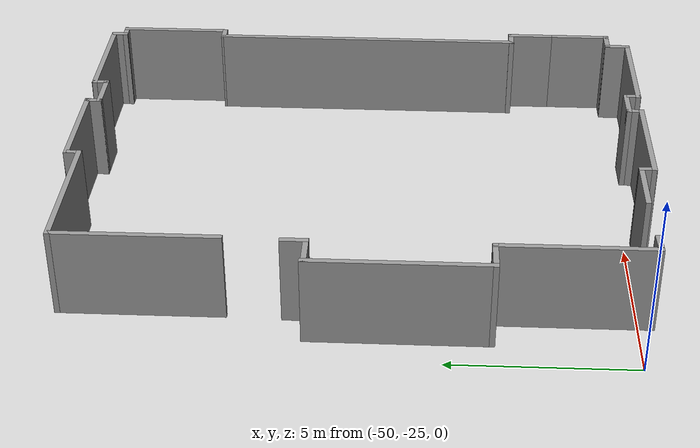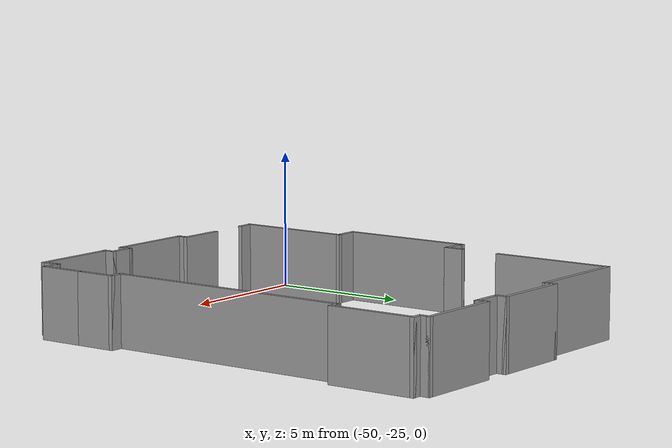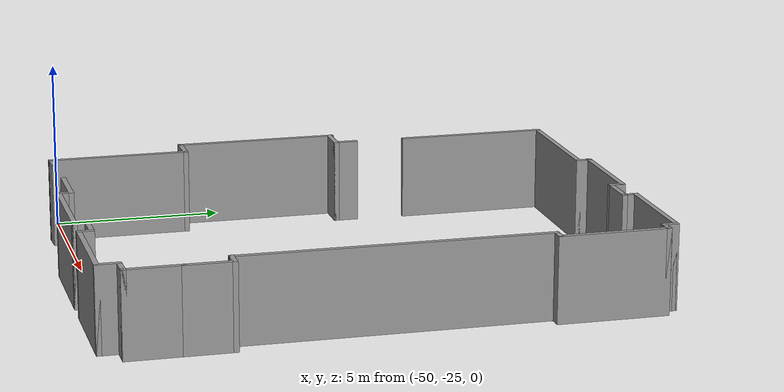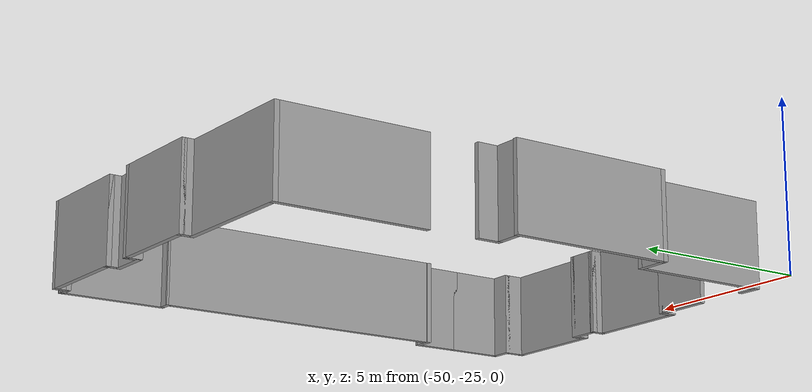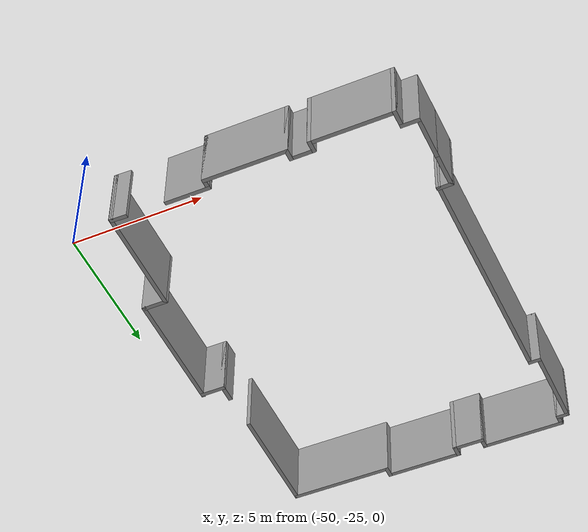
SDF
<?xml version='1.0'?>
<sdf version='1.7'>
  <model name='1107AI_Paredes'>
    <pose>-24.6225 -12.8543 0 0 -0 0</pose>
    <link name='Wall_0'>
      <collision name='Wall_0_Collision'>
        <geometry>
          <box>
            <size>0.667096 0.15 2.5</size>
          </box>
        </geometry>
        <pose>0 0 1.25 0 -0 0</pose>
      </collision>
      <visual name='Wall_0_Visual'>
        <pose>0 0 1.25 0 -0 0</pose>
        <geometry>
          <box>
            <size>0.667096 0.15 2.5</size>
          </box>
        </geometry>
        <material>
          <script>
            <uri>file://media/materials/scripts/gazebo.material</uri>
            <name>Gazebo/Grey</name>
          </script>
          <ambient>1 1 1 1</ambient>
        </material>
        <meta>
          <layer>0</layer>
        </meta>
      </visual>
      <pose>-23.4239 -12.4964 0 0 -0 -3.10728</pose>
    </link>
    <link name='Wall_1'>
      <collision name='Wall_1_Collision'>
        <geometry>
          <box>
            <size>0.15 0.15 2.5</size>
          </box>
        </geometry>
        <pose>0 0 1.25 0 -0 0</pose>
      </collision>
      <visual name='Wall_1_Visual'>
        <pose>0 0 1.25 0 -0 0</pose>
        <geometry>
          <box>
            <size>0.15 0.15 2.5</size>
          </box>
        </geometry>
        <material>
          <script>
            <uri>file://media/materials/scripts/gazebo.material</uri>
            <name>Gazebo/Grey</name>
          </script>
          <ambient>1 1 1 1</ambient>
        </material>
        <meta>
          <layer>0</layer>
        </meta>
      </visual>
      <pose>-23.6823 -12.5053 0 0 -0 0</pose>
    </link>
    <link name='Wall_11'>
      <collision name='Wall_11_Collision'>
        <geometry>
          <box>
            <size>1.75 0.15 2.5</size>
          </box>
        </geometry>
        <pose>0 0 1.25 0 -0 0</pose>
      </collision>
      <visual name='Wall_11_Visual'>
        <pose>0 0 1.25 0 -0 0</pose>
        <geometry>
          <box>
            <size>1.75 0.15 2.5</size>
          </box>
        </geometry>
        <material>
          <script>
            <uri>file://media/materials/scripts/gazebo.material</uri>
            <name>Gazebo/Grey</name>
          </script>
          <ambient>1 1 1 1</ambient>
        </material>
        <meta>
          <layer>0</layer>
        </meta>
      </visual>
      <pose>-20.776 -12.4293 0 0 -0 0</pose>
    </link>
    <link name='Wall_12'>
      <collision name='Wall_12_Collision'>
        <geometry>
          <box>
            <size>0.5 0.15 2.5</size>
          </box>
        </geometry>
        <pose>0 0 1.25 0 -0 0</pose>
      </collision>
      <visual name='Wall_12_Visual'>
        <pose>0 0 1.25 0 -0 0</pose>
        <geometry>
          <box>
            <size>0.5 0.15 2.5</size>
          </box>
        </geometry>
        <material>
          <script>
            <uri>file://media/materials/scripts/gazebo.material</uri>
            <name>Gazebo/Grey</name>
          </script>
          <ambient>1 1 1 1</ambient>
        </material>
        <meta>
          <layer>0</layer>
        </meta>
      </visual>
      <pose>-19.976 -12.6043 0 0 -0 -1.5708</pose>
    </link>
    <link name='Wall_13'>
      <collision name='Wall_13_Collision'>
        <geometry>
          <box>
            <size>3.25 0.15 2.5</size>
          </box>
        </geometry>
        <pose>0 0 1.25 0 -0 0</pose>
      </collision>
      <visual name='Wall_13_Visual'>
        <pose>0 0 1.25 0 -0 0</pose>
        <geometry>
          <box>
            <size>3.25 0.15 2.5</size>
          </box>
        </geometry>
        <material>
          <script>
            <uri>file://media/materials/scripts/gazebo.material</uri>
            <name>Gazebo/Grey</name>
          </script>
          <ambient>1 1 1 1</ambient>
        </material>
        <meta>
          <layer>0</layer>
        </meta>
      </visual>
      <pose>-18.426 -12.7793 0 0 -0 0</pose>
    </link>
    <link name='Wall_14'>
      <collision name='Wall_14_Collision'>
        <geometry>
          <box>
            <size>0.5 0.15 2.5</size>
          </box>
        </geometry>
        <pose>0 0 1.25 0 -0 0</pose>
      </collision>
      <visual name='Wall_14_Visual'>
        <pose>0 0 1.25 0 -0 0</pose>
        <geometry>
          <box>
            <size>0.5 0.15 2.5</size>
          </box>
        </geometry>
        <material>
          <script>
            <uri>file://media/materials/scripts/gazebo.material</uri>
            <name>Gazebo/Grey</name>
          </script>
          <ambient>1 1 1 1</ambient>
        </material>
        <meta>
          <layer>0</layer>
        </meta>
      </visual>
      <pose>-16.876 -12.6043 0 0 -0 1.5708</pose>
    </link>
    <link name='Wall_15'>
      <collision name='Wall_15_Collision'>
        <geometry>
          <box>
            <size>1 0.15 2.5</size>
          </box>
        </geometry>
        <pose>0 0 1.25 0 -0 0</pose>
      </collision>
      <visual name='Wall_15_Visual'>
        <pose>0 0 1.25 0 -0 0</pose>
        <geometry>
          <box>
            <size>1 0.15 2.5</size>
          </box>
        </geometry>
        <material>
          <script>
            <uri>file://media/materials/scripts/gazebo.material</uri>
            <name>Gazebo/Grey</name>
          </script>
          <ambient>1 1 1 1</ambient>
        </material>
        <meta>
          <layer>0</layer>
        </meta>
      </visual>
      <pose>-16.451 -12.4293 0 0 -0 0</pose>
    </link>
    <link name='Wall_16'>
      <collision name='Wall_16_Collision'>
        <geometry>
          <box>
            <size>0.5 0.15 2.5</size>
          </box>
        </geometry>
        <pose>0 0 1.25 0 -0 0</pose>
      </collision>
      <visual name='Wall_16_Visual'>
        <pose>0 0 1.25 0 -0 0</pose>
        <geometry>
          <box>
            <size>0.5 0.15 2.5</size>
          </box>
        </geometry>
        <material>
          <script>
            <uri>file://media/materials/scripts/gazebo.material</uri>
            <name>Gazebo/Grey</name>
          </script>
          <ambient>1 1 1 1</ambient>
        </material>
        <meta>
          <layer>0</layer>
        </meta>
      </visual>
      <pose>-16.026 -12.6043 0 0 -0 -1.5708</pose>
    </link>
    <link name='Wall_17'>
      <collision name='Wall_17_Collision'>
        <geometry>
          <box>
            <size>3.25 0.15 2.5</size>
          </box>
        </geometry>
        <pose>0 0 1.25 0 -0 0</pose>
      </collision>
      <visual name='Wall_17_Visual'>
        <pose>0 0 1.25 0 -0 0</pose>
        <geometry>
          <box>
            <size>3.25 0.15 2.5</size>
          </box>
        </geometry>
        <material>
          <script>
            <uri>file://media/materials/scripts/gazebo.material</uri>
            <name>Gazebo/Grey</name>
          </script>
          <ambient>1 1 1 1</ambient>
        </material>
        <meta>
          <layer>0</layer>
        </meta>
      </visual>
      <pose>-14.476 -12.7793 0 0 -0 0</pose>
    </link>
    <link name='Wall_18'>
      <collision name='Wall_18_Collision'>
        <geometry>
          <box>
            <size>0.75 0.15 2.5</size>
          </box>
        </geometry>
        <pose>0 0 1.25 0 -0 0</pose>
      </collision>
      <visual name='Wall_18_Visual'>
        <pose>0 0 1.25 0 -0 0</pose>
        <geometry>
          <box>
            <size>0.75 0.15 2.5</size>
          </box>
        </geometry>
        <material>
          <script>
            <uri>file://media/materials/scripts/gazebo.material</uri>
            <name>Gazebo/Grey</name>
          </script>
          <ambient>1 1 1 1</ambient>
        </material>
        <meta>
          <layer>0</layer>
        </meta>
      </visual>
      <pose>-12.926 -12.4793 0 0 -0 1.5708</pose>
    </link>
    <link name='Wall_19'>
      <collision name='Wall_19_Collision'>
        <geometry>
          <box>
            <size>0.75 0.15 2.5</size>
          </box>
        </geometry>
        <pose>0 0 1.25 0 -0 0</pose>
      </collision>
      <visual name='Wall_19_Visual'>
        <pose>0 0 1.25 0 -0 0</pose>
        <geometry>
          <box>
            <size>0.75 0.15 2.5</size>
          </box>
        </geometry>
        <material>
          <script>
            <uri>file://media/materials/scripts/gazebo.material</uri>
            <name>Gazebo/Grey</name>
          </script>
          <ambient>1 1 1 1</ambient>
        </material>
        <meta>
          <layer>0</layer>
        </meta>
      </visual>
      <pose>-12.626 -12.1793 0 0 -0 0</pose>
    </link>
    <link name='Wall_2'>
      <collision name='Wall_2_Collision'>
        <geometry>
          <box>
            <size>4.25 0.15 2.5</size>
          </box>
        </geometry>
        <pose>0 0 1.25 0 -0 0</pose>
      </collision>
      <visual name='Wall_2_Visual'>
        <pose>0 0 1.25 0 -0 0</pose>
        <geometry>
          <box>
            <size>4.25 0.15 2.5</size>
          </box>
        </geometry>
        <material>
          <script>
            <uri>file://media/materials/scripts/gazebo.material</uri>
            <name>Gazebo/Grey</name>
          </script>
          <ambient>1 1 1 1</ambient>
        </material>
        <meta>
          <layer>0</layer>
        </meta>
      </visual>
      <pose>-23.6975 -10.4553 0 0 -0 1.5708</pose>
    </link>
    <link name='Wall_20'>
      <collision name='Wall_20_Collision'>
        <geometry>
          <box>
            <size>1.75 0.15 2.5</size>
          </box>
        </geometry>
        <pose>0 0 1.25 0 -0 0</pose>
      </collision>
      <visual name='Wall_20_Visual'>
        <pose>0 0 1.25 0 -0 0</pose>
        <geometry>
          <box>
            <size>1.75 0.15 2.5</size>
          </box>
        </geometry>
        <material>
          <script>
            <uri>file://media/materials/scripts/gazebo.material</uri>
            <name>Gazebo/Grey</name>
          </script>
          <ambient>1 1 1 1</ambient>
        </material>
        <meta>
          <layer>0</layer>
        </meta>
      </visual>
      <pose>-12.326 -11.3793 0 0 -0 1.5708</pose>
    </link>
    <link name='Wall_21'>
      <collision name='Wall_21_Collision'>
        <geometry>
          <box>
            <size>1.5 0.15 2.5</size>
          </box>
        </geometry>
        <pose>0 0 1.25 0 -0 0</pose>
      </collision>
      <visual name='Wall_21_Visual'>
        <pose>0 0 1.25 0 -0 0</pose>
        <geometry>
          <box>
            <size>1.5 0.15 2.5</size>
          </box>
        </geometry>
        <material>
          <script>
            <uri>file://media/materials/scripts/gazebo.material</uri>
            <name>Gazebo/Grey</name>
          </script>
          <ambient>1 1 1 1</ambient>
        </material>
        <meta>
          <layer>0</layer>
        </meta>
      </visual>
      <pose>-12.326 -9.90429 0 0 -0 1.5708</pose>
    </link>
    <link name='Wall_23'>
      <collision name='Wall_23_Collision'>
        <geometry>
          <box>
            <size>0.620681 0.15 2.5</size>
          </box>
        </geometry>
        <pose>0 0 1.25 0 -0 0</pose>
      </collision>
      <visual name='Wall_23_Visual'>
        <pose>0 0 1.25 0 -0 0</pose>
        <geometry>
          <box>
            <size>0.620681 0.15 2.5</size>
          </box>
        </geometry>
        <material>
          <script>
            <uri>file://media/materials/scripts/gazebo.material</uri>
            <name>Gazebo/Grey</name>
          </script>
          <ambient>1 1 1 1</ambient>
        </material>
        <meta>
          <layer>0</layer>
        </meta>
      </visual>
      <pose>-12.5613 -9.22929 0 0 -0 3.14159</pose>
    </link>
    <link name='Wall_24'>
      <collision name='Wall_24_Collision'>
        <geometry>
          <box>
            <size>9.12169 0.15 2.5</size>
          </box>
        </geometry>
        <pose>0 0 1.25 0 -0 0</pose>
      </collision>
      <visual name='Wall_24_Visual'>
        <pose>0 0 1.25 0 -0 0</pose>
        <geometry>
          <box>
            <size>9.12169 0.15 2.5</size>
          </box>
        </geometry>
        <material>
          <script>
            <uri>file://media/materials/scripts/gazebo.material</uri>
            <name>Gazebo/Grey</name>
          </script>
          <ambient>1 1 1 1</ambient>
        </material>
        <meta>
          <layer>0</layer>
        </meta>
      </visual>
      <pose>-12.7638 -4.74346 0 0 -0 1.56795</pose>
    </link>
    <link name='Wall_28'>
      <collision name='Wall_28_Collision'>
        <geometry>
          <box>
            <size>0.5 0.15 2.5</size>
          </box>
        </geometry>
        <pose>0 0 1.25 0 -0 0</pose>
      </collision>
      <visual name='Wall_28_Visual'>
        <pose>0 0 1.25 0 -0 0</pose>
        <geometry>
          <box>
            <size>0.5 0.15 2.5</size>
          </box>
        </geometry>
        <material>
          <script>
            <uri>file://media/materials/scripts/gazebo.material</uri>
            <name>Gazebo/Grey</name>
          </script>
          <ambient>1 1 1 1</ambient>
        </material>
        <meta>
          <layer>0</layer>
        </meta>
      </visual>
      <pose>-12.576 -0.257623 0 0 -0 0</pose>
    </link>
    <link name='Wall_29'>
      <collision name='Wall_29_Collision'>
        <geometry>
          <box>
            <size>3.25 0.15 2.5</size>
          </box>
        </geometry>
        <pose>0 0 1.25 0 -0 0</pose>
      </collision>
      <visual name='Wall_29_Visual'>
        <pose>0 0 1.25 0 -0 0</pose>
        <geometry>
          <box>
            <size>3.25 0.15 2.5</size>
          </box>
        </geometry>
        <material>
          <script>
            <uri>file://media/materials/scripts/gazebo.material</uri>
            <name>Gazebo/Grey</name>
          </script>
          <ambient>1 1 1 1</ambient>
        </material>
        <meta>
          <layer>0</layer>
        </meta>
      </visual>
      <pose>-12.401 1.29238 0 0 -0 1.5708</pose>
    </link>
    <link name='Wall_30'>
      <collision name='Wall_30_Collision'>
        <geometry>
          <box>
            <size>0.5 0.15 2.5</size>
          </box>
        </geometry>
        <pose>0 0 1.25 0 -0 0</pose>
      </collision>
      <visual name='Wall_30_Visual'>
        <pose>0 0 1.25 0 -0 0</pose>
        <geometry>
          <box>
            <size>0.5 0.15 2.5</size>
          </box>
        </geometry>
        <material>
          <script>
            <uri>file://media/materials/scripts/gazebo.material</uri>
            <name>Gazebo/Grey</name>
          </script>
          <ambient>1 1 1 1</ambient>
        </material>
        <meta>
          <layer>0</layer>
        </meta>
      </visual>
      <pose>-12.576 2.84238 0 0 -0 3.14159</pose>
    </link>
    <link name='Wall_31'>
      <collision name='Wall_31_Collision'>
        <geometry>
          <box>
            <size>0.5 0.15 2.5</size>
          </box>
        </geometry>
        <pose>0 0 1.25 0 -0 0</pose>
      </collision>
      <visual name='Wall_31_Visual'>
        <pose>0 0 1.25 0 -0 0</pose>
        <geometry>
          <box>
            <size>0.5 0.15 2.5</size>
          </box>
        </geometry>
        <material>
          <script>
            <uri>file://media/materials/scripts/gazebo.material</uri>
            <name>Gazebo/Grey</name>
          </script>
          <ambient>1 1 1 1</ambient>
        </material>
        <meta>
          <layer>0</layer>
        </meta>
      </visual>
      <pose>-12.751 3.01738 0 0 -0 1.5708</pose>
    </link>
    <link name='Wall_32'>
      <collision name='Wall_32_Collision'>
        <geometry>
          <box>
            <size>3.25 0.15 2.5</size>
          </box>
        </geometry>
        <pose>0 0 1.25 0 -0 0</pose>
      </collision>
      <visual name='Wall_32_Visual'>
        <pose>0 0 1.25 0 -0 0</pose>
        <geometry>
          <box>
            <size>3.25 0.15 2.5</size>
          </box>
        </geometry>
        <material>
          <script>
            <uri>file://media/materials/scripts/gazebo.material</uri>
            <name>Gazebo/Grey</name>
          </script>
          <ambient>1 1 1 1</ambient>
        </material>
        <meta>
          <layer>0</layer>
        </meta>
      </visual>
      <pose>-14.301 3.19238 0 0 -0 3.14159</pose>
    </link>
    <link name='Wall_33'>
      <collision name='Wall_33_Collision'>
        <geometry>
          <box>
            <size>0.5 0.15 2.5</size>
          </box>
        </geometry>
        <pose>0 0 1.25 0 -0 0</pose>
      </collision>
      <visual name='Wall_33_Visual'>
        <pose>0 0 1.25 0 -0 0</pose>
        <geometry>
          <box>
            <size>0.5 0.15 2.5</size>
          </box>
        </geometry>
        <material>
          <script>
            <uri>file://media/materials/scripts/gazebo.material</uri>
            <name>Gazebo/Grey</name>
          </script>
          <ambient>1 1 1 1</ambient>
        </material>
        <meta>
          <layer>0</layer>
        </meta>
      </visual>
      <pose>-15.851 3.01738 0 0 -0 -1.5708</pose>
    </link>
    <link name='Wall_34'>
      <collision name='Wall_34_Collision'>
        <geometry>
          <box>
            <size>1.25 0.15 2.5</size>
          </box>
        </geometry>
        <pose>0 0 1.25 0 -0 0</pose>
      </collision>
      <visual name='Wall_34_Visual'>
        <pose>0 0 1.25 0 -0 0</pose>
        <geometry>
          <box>
            <size>1.25 0.15 2.5</size>
          </box>
        </geometry>
        <material>
          <script>
            <uri>file://media/materials/scripts/gazebo.material</uri>
            <name>Gazebo/Grey</name>
          </script>
          <ambient>1 1 1 1</ambient>
        </material>
        <meta>
          <layer>0</layer>
        </meta>
      </visual>
      <pose>-16.401 2.84238 0 0 -0 3.14159</pose>
    </link>
    <link name='Wall_35'>
      <collision name='Wall_35_Collision'>
        <geometry>
          <box>
            <size>0.5 0.15 2.5</size>
          </box>
        </geometry>
        <pose>0 0 1.25 0 -0 0</pose>
      </collision>
      <visual name='Wall_35_Visual'>
        <pose>0 0 1.25 0 -0 0</pose>
        <geometry>
          <box>
            <size>0.5 0.15 2.5</size>
          </box>
        </geometry>
        <material>
          <script>
            <uri>file://media/materials/scripts/gazebo.material</uri>
            <name>Gazebo/Grey</name>
          </script>
          <ambient>1 1 1 1</ambient>
        </material>
        <meta>
          <layer>0</layer>
        </meta>
      </visual>
      <pose>-16.951 3.01738 0 0 -0 1.5708</pose>
    </link>
    <link name='Wall_36'>
      <collision name='Wall_36_Collision'>
        <geometry>
          <box>
            <size>3 0.15 2.5</size>
          </box>
        </geometry>
        <pose>0 0 1.25 0 -0 0</pose>
      </collision>
      <visual name='Wall_36_Visual'>
        <pose>0 0 1.25 0 -0 0</pose>
        <geometry>
          <box>
            <size>3 0.15 2.5</size>
          </box>
        </geometry>
        <material>
          <script>
            <uri>file://media/materials/scripts/gazebo.material</uri>
            <name>Gazebo/Grey</name>
          </script>
          <ambient>1 1 1 1</ambient>
        </material>
        <meta>
          <layer>0</layer>
        </meta>
      </visual>
      <pose>-18.376 3.19238 0 0 -0 3.14159</pose>
    </link>
    <link name='Wall_37'>
      <collision name='Wall_37_Collision'>
        <geometry>
          <box>
            <size>0.5 0.15 2.5</size>
          </box>
        </geometry>
        <pose>0 0 1.25 0 -0 0</pose>
      </collision>
      <visual name='Wall_37_Visual'>
        <pose>0 0 1.25 0 -0 0</pose>
        <geometry>
          <box>
            <size>0.5 0.15 2.5</size>
          </box>
        </geometry>
        <material>
          <script>
            <uri>file://media/materials/scripts/gazebo.material</uri>
            <name>Gazebo/Grey</name>
          </script>
          <ambient>1 1 1 1</ambient>
        </material>
        <meta>
          <layer>0</layer>
        </meta>
      </visual>
      <pose>-19.801 3.01738 0 0 -0 -1.5708</pose>
    </link>
    <link name='Wall_38'>
      <collision name='Wall_38_Collision'>
        <geometry>
          <box>
            <size>4 0.15 2.5</size>
          </box>
        </geometry>
        <pose>0 0 1.25 0 -0 0</pose>
      </collision>
      <visual name='Wall_38_Visual'>
        <pose>0 0 1.25 0 -0 0</pose>
        <geometry>
          <box>
            <size>4 0.15 2.5</size>
          </box>
        </geometry>
        <material>
          <script>
            <uri>file://media/materials/scripts/gazebo.material</uri>
            <name>Gazebo/Grey</name>
          </script>
          <ambient>1 1 1 1</ambient>
        </material>
        <meta>
          <layer>0</layer>
        </meta>
      </visual>
      <pose>-21.726 2.84238 0 0 -0 3.14159</pose>
    </link>
    <link name='Wall_39'>
      <collision name='Wall_39_Collision'>
        <geometry>
          <box>
            <size>4.5 0.15 2.5</size>
          </box>
        </geometry>
        <pose>0 0 1.25 0 -0 0</pose>
      </collision>
      <visual name='Wall_39_Visual'>
        <pose>0 0 1.25 0 -0 0</pose>
        <geometry>
          <box>
            <size>4.5 0.15 2.5</size>
          </box>
        </geometry>
        <material>
          <script>
            <uri>file://media/materials/scripts/gazebo.material</uri>
            <name>Gazebo/Grey</name>
          </script>
          <ambient>1 1 1 1</ambient>
        </material>
        <meta>
          <layer>0</layer>
        </meta>
      </visual>
      <pose>-23.651 0.667377 0 0 -0 -1.5708</pose>
    </link>
    <link name='Wall_41'>
      <collision name='Wall_41_Collision'>
        <geometry>
          <box>
            <size>0.75 0.15 2.5</size>
          </box>
        </geometry>
        <pose>0 0 1.25 0 -0 0</pose>
      </collision>
      <visual name='Wall_41_Visual'>
        <pose>0 0 1.25 0 -0 0</pose>
        <geometry>
          <box>
            <size>0.75 0.15 2.5</size>
          </box>
        </geometry>
        <material>
          <script>
            <uri>file://media/materials/scripts/gazebo.material</uri>
            <name>Gazebo/Grey</name>
          </script>
          <ambient>1 1 1 1</ambient>
        </material>
        <meta>
          <layer>0</layer>
        </meta>
      </visual>
      <pose>-23.6975 -3.38463 0 0 -0 1.5708</pose>
    </link>
    <link name='Wall_7'>
      <collision name='Wall_7_Collision'>
        <geometry>
          <box>
            <size>1 0.15 2.5</size>
          </box>
        </geometry>
        <pose>0 0 1.25 0 -0 0</pose>
      </collision>
      <visual name='Wall_7_Visual'>
        <pose>0 0 1.25 0 -0 0</pose>
        <geometry>
          <box>
            <size>1 0.15 2.5</size>
          </box>
        </geometry>
        <material>
          <script>
            <uri>file://media/materials/scripts/gazebo.material</uri>
            <name>Gazebo/Grey</name>
          </script>
          <ambient>1 1 1 1</ambient>
        </material>
        <meta>
          <layer>0</layer>
        </meta>
      </visual>
      <pose>-24.1225 -8.40532 0 0 -0 3.14159</pose>
    </link>
    <link name='Wall_8'>
      <collision name='Wall_8_Collision'>
        <geometry>
          <box>
            <size>4.91091 0.15 2.5</size>
          </box>
        </geometry>
        <pose>0 0 1.25 0 -0 0</pose>
      </collision>
      <visual name='Wall_8_Visual'>
        <pose>0 0 1.25 0 -0 0</pose>
        <geometry>
          <box>
            <size>4.91091 0.15 2.5</size>
          </box>
        </geometry>
        <material>
          <script>
            <uri>file://media/materials/scripts/gazebo.material</uri>
            <name>Gazebo/Grey</name>
          </script>
          <ambient>1 1 1 1</ambient>
        </material>
        <meta>
          <layer>0</layer>
        </meta>
      </visual>
      <pose>-24.5475 -6.02486 0 0 -0 1.5708</pose>
    </link>
    <link name='Wall_9'>
      <collision name='Wall_9_Collision'>
        <geometry>
          <box>
            <size>1 0.15 2.5</size>
          </box>
        </geometry>
        <pose>0 0 1.25 0 -0 0</pose>
      </collision>
      <visual name='Wall_9_Visual'>
        <pose>0 0 1.25 0 -0 0</pose>
        <geometry>
          <box>
            <size>1 0.15 2.5</size>
          </box>
        </geometry>
        <material>
          <script>
            <uri>file://media/materials/scripts/gazebo.material</uri>
            <name>Gazebo/Grey</name>
          </script>
          <ambient>1 1 1 1</ambient>
        </material>
        <meta>
          <layer>0</layer>
        </meta>
      </visual>
      <pose>-24.1225 -3.68463 0 0 -0 0</pose>
    </link>
    <static>1</static>
  </model>
</sdf>
